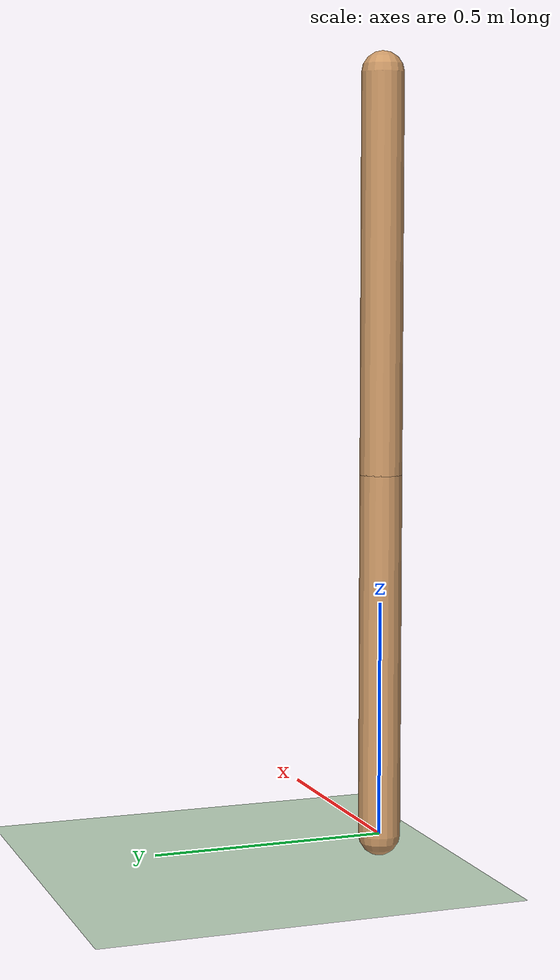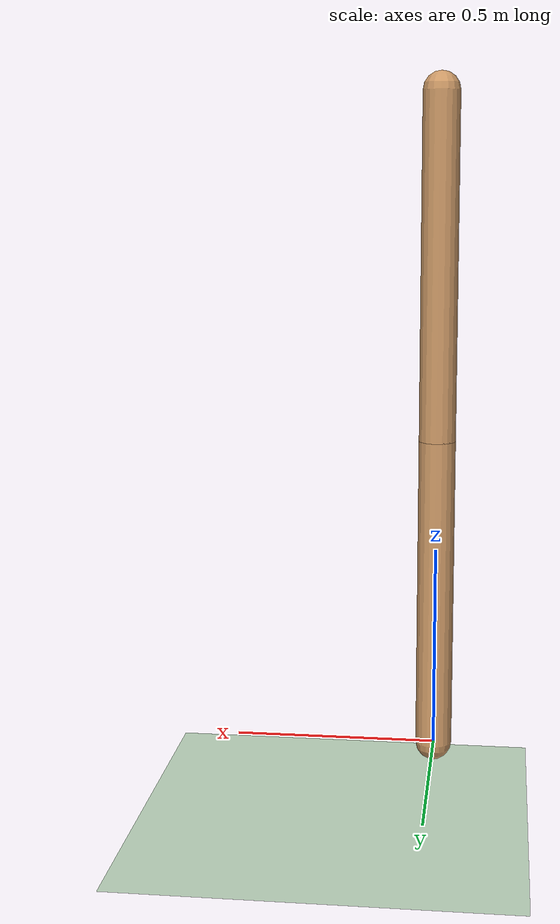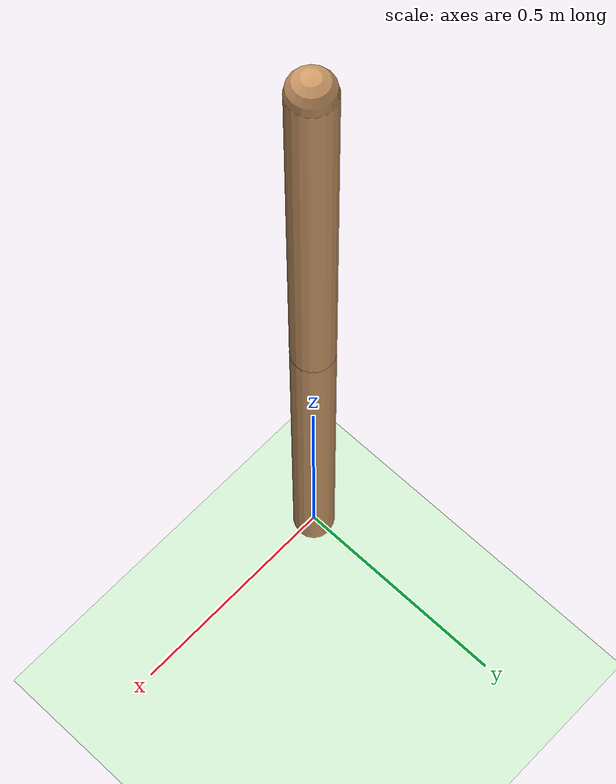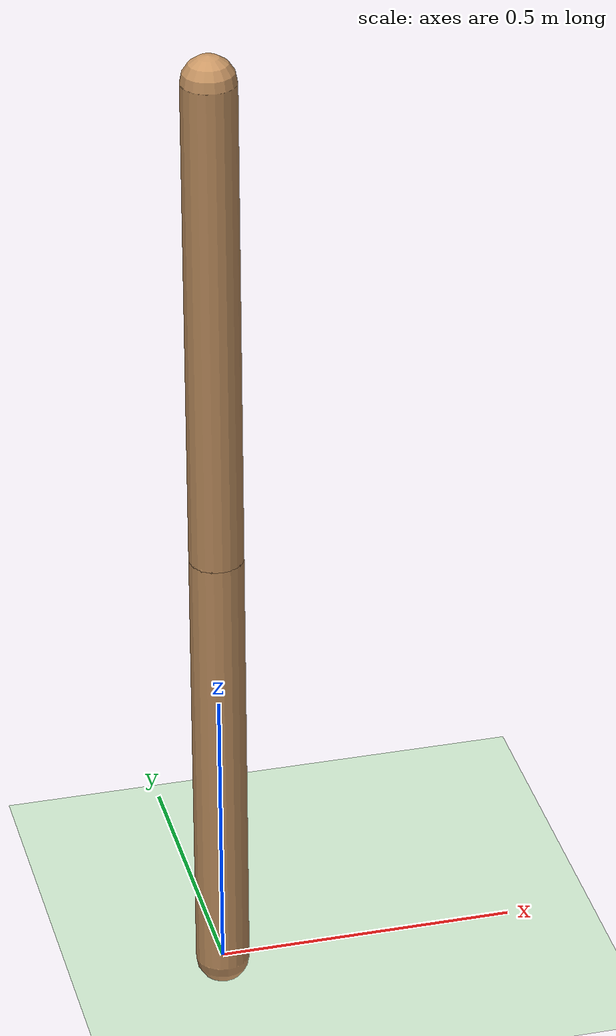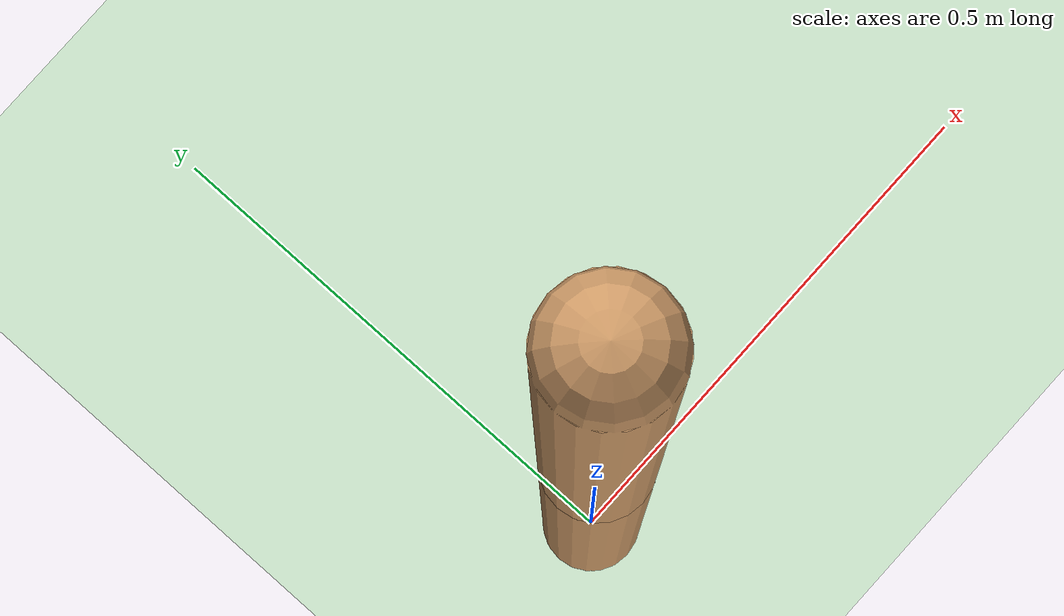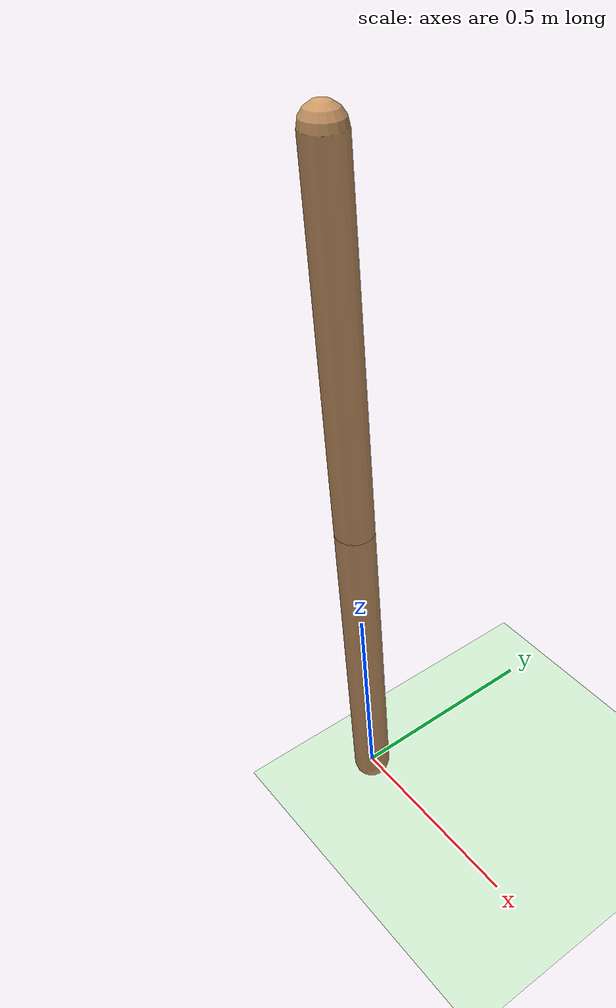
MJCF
<mujoco model="IDP_custom">
  <compiler angle="radian" coordinate="local" inertiafromgeom="false" />
  <default>
    <joint damping="0.0" />
    <geom contype="0" friction="0.0 0.0 0.0" />
  </default>
  <option gravity="0 0 -9.81" integrator="RK4" timestep="0.0083333333" />
  <size nstack="3000" nuser_actuator="10" nuserdata="100" />
  <asset>
    <texture builtin="gradient" height="100" rgb1=".4 .5 .6" rgb2="0 0 0" type="skybox" width="100" />
    <texture builtin="flat" height="1278" mark="cross" markrgb="1 1 1" name="texgeom" random="0.01" rgb1="0.8 0.6 0.4" rgb2="0.8 0.6 0.4" type="cube" width="127" />
    <texture builtin="checker" height="100" name="texplane" rgb1="0 0 0" rgb2="0.8 0.8 0.8" type="2d" width="100" />
    <material name="MatPlane" reflectance="0.5" shininess="1" specular="1" texrepeat="60 60" texture="texplane" />
    <material name="geom" texture="texgeom" texuniform="true" />
  </asset>
  <worldbody>
    <light cutoff="100" diffuse="1 1 1" dir="-0 0 -1.3" directional="true" exponent="1" pos="0 0 1.3" specular=".1 .1 .1" />
    <geom condim="3" friction="1 .1 .1" material="MatPlane" name="floor" pos="0 0 -0.1" rgba="0.8 0.9 0.8 1" size="20 20 0.125" type="plane" />
    <body name="leg" pos="0 0 0">
      <joint axis="0 -1 0" limited="true" name="hinge" pos="0 0 0" range="-1.0 1.0" type="hinge" />
      <geom fromto="0 0 0 0 0 0.7750" name="cpole" rgba="0.8 0.6 0.4 1.0" size="0.045" type="capsule" />
      <inertial diaginertia="1.085280 1.085280 0.001" mass="23.7953" pos="0 0 0.5184" />
      <body name="body" pos="0 0 0.7750">
        <joint axis="0 -1 0" limited="true" name="hinge2" pos="0 0 0" range="-1.0 1.0" type="hinge" />
        <geom fromto="0 0 0 0 0 0.8400" name="cpole2" rgba="0.8 0.6 0.4 1.0" size="0.045" type="capsule" />
        <inertial diaginertia="2.227466 2.227466 0.001" mass="53.9829" pos="0 0 0.3189" />
      </body>
    </body>
  </worldbody>
  <actuator>
    <motor ctrllimited="true" ctrlrange="-1 1" gear="100" joint="hinge" />
    <motor ctrllimited="true" ctrlrange="-1 1" gear="100" joint="hinge2" />
  </actuator>
</mujoco>
